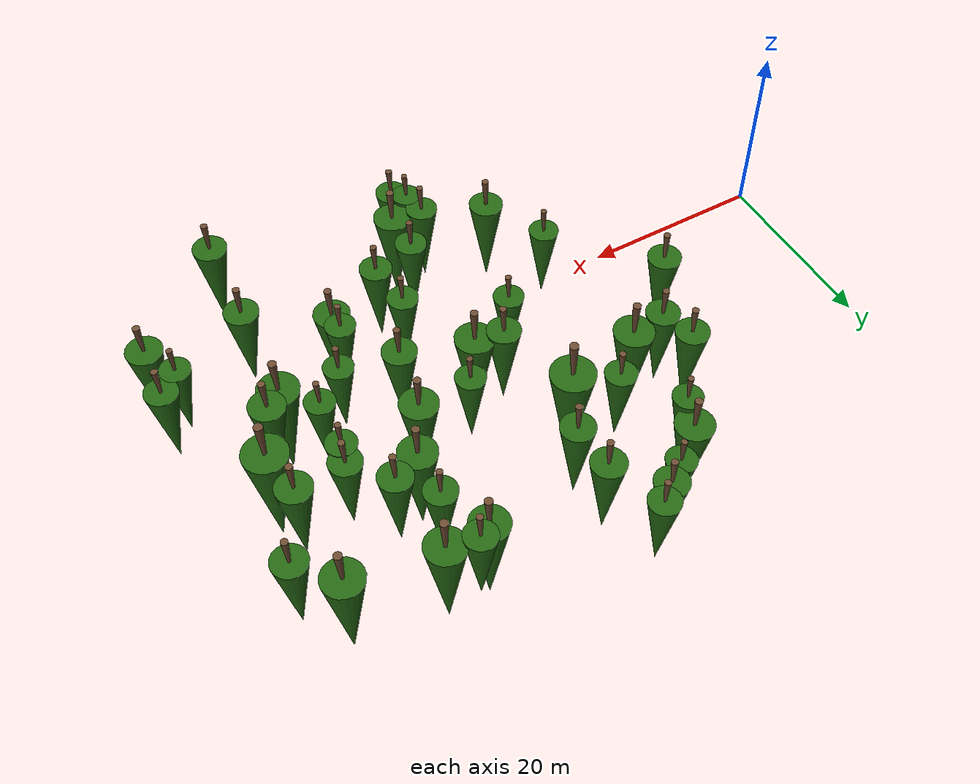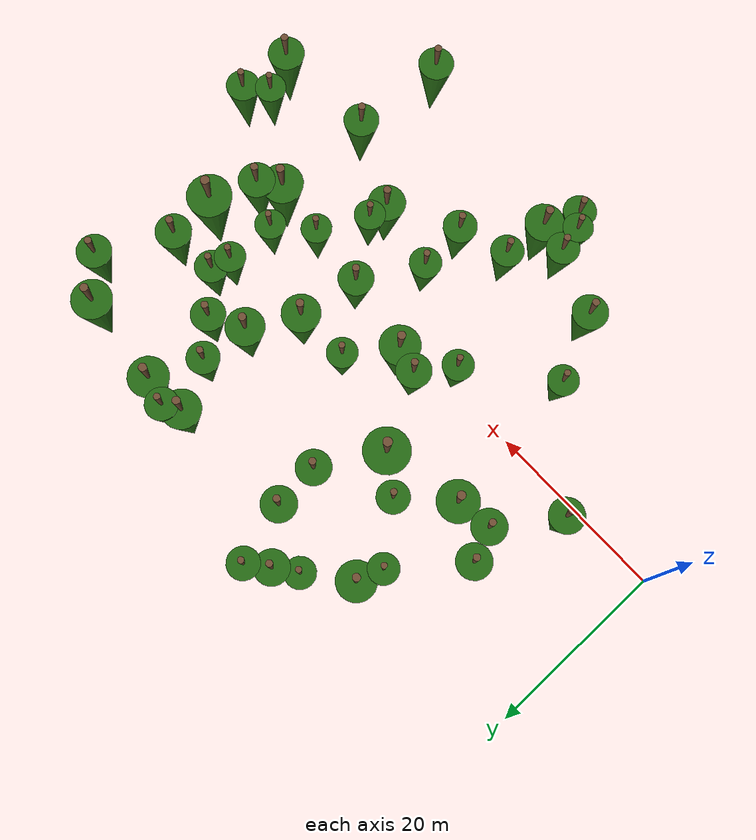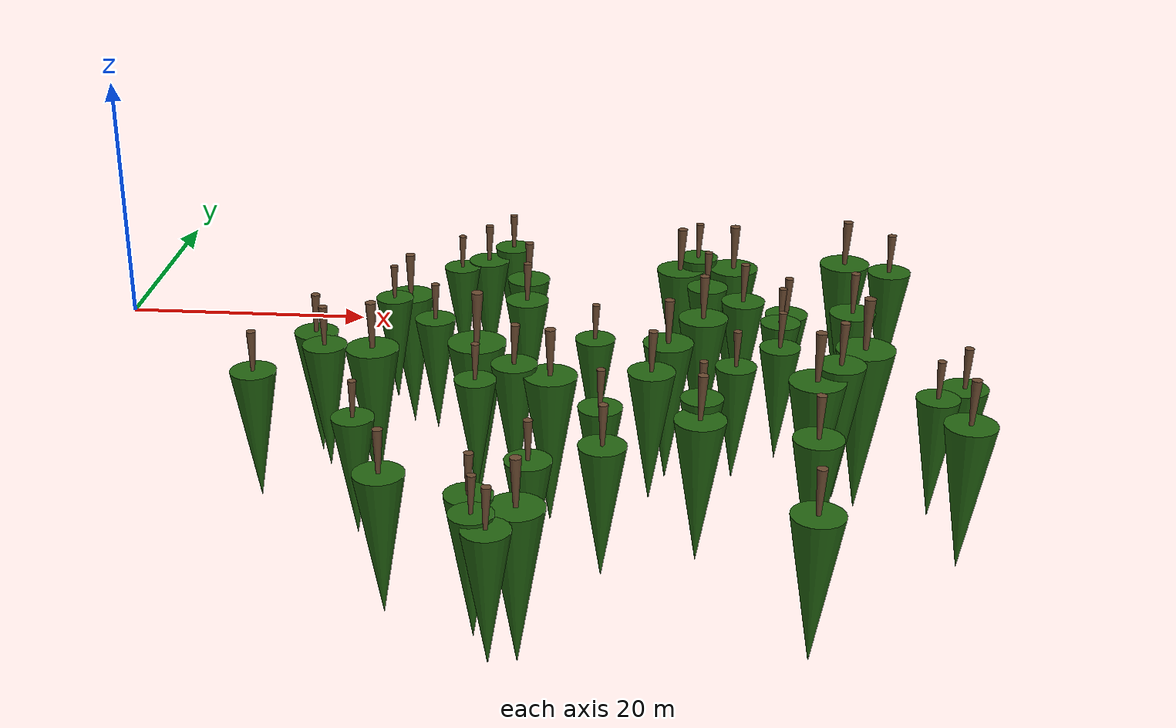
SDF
<sdf version="1.10">
 <model name="lehrforst_trees">
  <static>true</static>
  <link name="tree_0003">
   <collision name="tree_0003_collision">
    <pose>28.569 8.946 -5.416 3.142 0.028 0</pose>
    <geometry><cone><radius>0.545</radius><length>8.720</length></cone></geometry>
   </collision>
   <visual name="tree_0003_trunk">
    <pose>28.569 8.946 -5.416 3.142 0.028 0</pose>
    <geometry><cone><radius>0.545</radius><length>8.720</length></cone></geometry>
    <material>
     <ambient>0.42 0.29 0.19 1</ambient>
     <diffuse>0.42 0.29 0.19 1</diffuse>
     <specular>0.42 0.29 0.19 1</specular>
    </material>
   </visual>
   <visual name="tree_0003_leaves">
    <pose>28.569 8.946 -14.136 3.142 0 0</pose>
    <geometry><cone><radius>2.725</radius><length>16.350</length></cone></geometry>
    <material>
     <ambient>0.14 0.40 0.07 1</ambient>
     <diffuse>0.14 0.40 0.07 1</diffuse>
     <specular>0.14 0.40 0.07 1</specular>
    </material>
   </visual>
  </link>
  <link name="tree_0008">
   <collision name="tree_0008_collision">
    <pose>63.142 3.854 -2.577 3.142 0.009 0</pose>
    <geometry><cone><radius>0.523</radius><length>8.368</length></cone></geometry>
   </collision>
   <visual name="tree_0008_trunk">
    <pose>63.142 3.854 -2.577 3.142 0.009 0</pose>
    <geometry><cone><radius>0.523</radius><length>8.368</length></cone></geometry>
    <material>
     <ambient>0.42 0.29 0.19 1</ambient>
     <diffuse>0.42 0.29 0.19 1</diffuse>
     <specular>0.42 0.29 0.19 1</specular>
    </material>
   </visual>
   <visual name="tree_0008_leaves">
    <pose>63.142 3.854 -10.945 3.142 0 0</pose>
    <geometry><cone><radius>2.615</radius><length>15.690</length></cone></geometry>
    <material>
     <ambient>0.14 0.40 0.07 1</ambient>
     <diffuse>0.14 0.40 0.07 1</diffuse>
     <specular>0.14 0.40 0.07 1</specular>
    </material>
   </visual>
  </link>
  <link name="tree_0011">
   <collision name="tree_0011_collision">
    <pose>19.209 7.130 -5.545 3.142 0.007 0</pose>
    <geometry><cone><radius>0.492</radius><length>7.872</length></cone></geometry>
   </collision>
   <visual name="tree_0011_trunk">
    <pose>19.209 7.130 -5.545 3.142 0.007 0</pose>
    <geometry><cone><radius>0.492</radius><length>7.872</length></cone></geometry>
    <material>
     <ambient>0.42 0.29 0.19 1</ambient>
     <diffuse>0.42 0.29 0.19 1</diffuse>
     <specular>0.42 0.29 0.19 1</specular>
    </material>
   </visual>
   <visual name="tree_0011_leaves">
    <pose>19.209 7.130 -13.417 3.142 0 0</pose>
    <geometry><cone><radius>2.460</radius><length>14.760</length></cone></geometry>
    <material>
     <ambient>0.14 0.40 0.07 1</ambient>
     <diffuse>0.14 0.40 0.07 1</diffuse>
     <specular>0.14 0.40 0.07 1</specular>
    </material>
   </visual>
  </link>
  <link name="tree_0013">
   <collision name="tree_0013_collision">
    <pose>58.567 -3.165 -2.569 3.142 0.017 0</pose>
    <geometry><cone><radius>0.486</radius><length>7.776</length></cone></geometry>
   </collision>
   <visual name="tree_0013_trunk">
    <pose>58.567 -3.165 -2.569 3.142 0.017 0</pose>
    <geometry><cone><radius>0.486</radius><length>7.776</length></cone></geometry>
    <material>
     <ambient>0.42 0.29 0.19 1</ambient>
     <diffuse>0.42 0.29 0.19 1</diffuse>
     <specular>0.42 0.29 0.19 1</specular>
    </material>
   </visual>
   <visual name="tree_0013_leaves">
    <pose>58.567 -3.165 -10.345 3.142 0 0</pose>
    <geometry><cone><radius>2.430</radius><length>14.580</length></cone></geometry>
    <material>
     <ambient>0.14 0.40 0.07 1</ambient>
     <diffuse>0.14 0.40 0.07 1</diffuse>
     <specular>0.14 0.40 0.07 1</specular>
    </material>
   </visual>
  </link>
  <link name="tree_0015">
   <collision name="tree_0015_collision">
    <pose>36.035 -0.141 -4.305 3.142 0.002 0</pose>
    <geometry><cone><radius>0.478</radius><length>7.648</length></cone></geometry>
   </collision>
   <visual name="tree_0015_trunk">
    <pose>36.035 -0.141 -4.305 3.142 0.002 0</pose>
    <geometry><cone><radius>0.478</radius><length>7.648</length></cone></geometry>
    <material>
     <ambient>0.42 0.29 0.19 1</ambient>
     <diffuse>0.42 0.29 0.19 1</diffuse>
     <specular>0.42 0.29 0.19 1</specular>
    </material>
   </visual>
   <visual name="tree_0015_leaves">
    <pose>36.035 -0.141 -11.953 3.142 0 0</pose>
    <geometry><cone><radius>2.390</radius><length>14.340</length></cone></geometry>
    <material>
     <ambient>0.14 0.40 0.07 1</ambient>
     <diffuse>0.14 0.40 0.07 1</diffuse>
     <specular>0.14 0.40 0.07 1</specular>
    </material>
   </visual>
  </link>
  <link name="tree_0019">
   <collision name="tree_0019_collision">
    <pose>52.082 22.715 -2.816 3.142 0.006 0</pose>
    <geometry><cone><radius>0.472</radius><length>7.552</length></cone></geometry>
   </collision>
   <visual name="tree_0019_trunk">
    <pose>52.082 22.715 -2.816 3.142 0.006 0</pose>
    <geometry><cone><radius>0.472</radius><length>7.552</length></cone></geometry>
    <material>
     <ambient>0.42 0.29 0.19 1</ambient>
     <diffuse>0.42 0.29 0.19 1</diffuse>
     <specular>0.42 0.29 0.19 1</specular>
    </material>
   </visual>
   <visual name="tree_0019_leaves">
    <pose>52.082 22.715 -10.368 3.142 0 0</pose>
    <geometry><cone><radius>2.360</radius><length>14.160</length></cone></geometry>
    <material>
     <ambient>0.14 0.40 0.07 1</ambient>
     <diffuse>0.14 0.40 0.07 1</diffuse>
     <specular>0.14 0.40 0.07 1</specular>
    </material>
   </visual>
  </link>
  <link name="tree_0021">
   <collision name="tree_0021_collision">
    <pose>62.606 21.554 -1.598 3.142 0.021 0</pose>
    <geometry><cone><radius>0.469</radius><length>7.504</length></cone></geometry>
   </collision>
   <visual name="tree_0021_trunk">
    <pose>62.606 21.554 -1.598 3.142 0.021 0</pose>
    <geometry><cone><radius>0.469</radius><length>7.504</length></cone></geometry>
    <material>
     <ambient>0.42 0.29 0.19 1</ambient>
     <diffuse>0.42 0.29 0.19 1</diffuse>
     <specular>0.42 0.29 0.19 1</specular>
    </material>
   </visual>
   <visual name="tree_0021_leaves">
    <pose>62.606 21.554 -9.102 3.142 0 0</pose>
    <geometry><cone><radius>2.345</radius><length>14.070</length></cone></geometry>
    <material>
     <ambient>0.14 0.40 0.07 1</ambient>
     <diffuse>0.14 0.40 0.07 1</diffuse>
     <specular>0.14 0.40 0.07 1</specular>
    </material>
   </visual>
  </link>
  <link name="tree_0026">
   <collision name="tree_0026_collision">
    <pose>20.560 21.103 -6.016 3.142 0.017 0</pose>
    <geometry><cone><radius>0.464</radius><length>7.424</length></cone></geometry>
   </collision>
   <visual name="tree_0026_trunk">
    <pose>20.560 21.103 -6.016 3.142 0.017 0</pose>
    <geometry><cone><radius>0.464</radius><length>7.424</length></cone></geometry>
    <material>
     <ambient>0.42 0.29 0.19 1</ambient>
     <diffuse>0.42 0.29 0.19 1</diffuse>
     <specular>0.42 0.29 0.19 1</specular>
    </material>
   </visual>
   <visual name="tree_0026_leaves">
    <pose>20.560 21.103 -13.440 3.142 0 0</pose>
    <geometry><cone><radius>2.320</radius><length>13.920</length></cone></geometry>
    <material>
     <ambient>0.14 0.40 0.07 1</ambient>
     <diffuse>0.14 0.40 0.07 1</diffuse>
     <specular>0.14 0.40 0.07 1</specular>
    </material>
   </visual>
  </link>
  <link name="tree_0034">
   <collision name="tree_0034_collision">
    <pose>35.260 -22.294 -4.820 3.142 0.003 0</pose>
    <geometry><cone><radius>0.460</radius><length>7.360</length></cone></geometry>
   </collision>
   <visual name="tree_0034_trunk">
    <pose>35.260 -22.294 -4.820 3.142 0.003 0</pose>
    <geometry><cone><radius>0.460</radius><length>7.360</length></cone></geometry>
    <material>
     <ambient>0.42 0.29 0.19 1</ambient>
     <diffuse>0.42 0.29 0.19 1</diffuse>
     <specular>0.42 0.29 0.19 1</specular>
    </material>
   </visual>
   <visual name="tree_0034_leaves">
    <pose>35.260 -22.294 -12.180 3.142 0 0</pose>
    <geometry><cone><radius>2.300</radius><length>13.800</length></cone></geometry>
    <material>
     <ambient>0.14 0.40 0.07 1</ambient>
     <diffuse>0.14 0.40 0.07 1</diffuse>
     <specular>0.14 0.40 0.07 1</specular>
    </material>
   </visual>
  </link>
  <link name="tree_0035">
   <collision name="tree_0035_collision">
    <pose>46.962 22.473 -3.054 3.142 0.028 0</pose>
    <geometry><cone><radius>0.458</radius><length>7.328</length></cone></geometry>
   </collision>
   <visual name="tree_0035_trunk">
    <pose>46.962 22.473 -3.054 3.142 0.028 0</pose>
    <geometry><cone><radius>0.458</radius><length>7.328</length></cone></geometry>
    <material>
     <ambient>0.42 0.29 0.19 1</ambient>
     <diffuse>0.42 0.29 0.19 1</diffuse>
     <specular>0.42 0.29 0.19 1</specular>
    </material>
   </visual>
   <visual name="tree_0035_leaves">
    <pose>46.962 22.473 -10.382 3.142 0 0</pose>
    <geometry><cone><radius>2.290</radius><length>13.740</length></cone></geometry>
    <material>
     <ambient>0.14 0.40 0.07 1</ambient>
     <diffuse>0.14 0.40 0.07 1</diffuse>
     <specular>0.14 0.40 0.07 1</specular>
    </material>
   </visual>
  </link>
  <link name="tree_0040">
   <collision name="tree_0040_collision">
    <pose>49.152 11.139 -3.291 3.142 0.004 0</pose>
    <geometry><cone><radius>0.453</radius><length>7.248</length></cone></geometry>
   </collision>
   <visual name="tree_0040_trunk">
    <pose>49.152 11.139 -3.291 3.142 0.004 0</pose>
    <geometry><cone><radius>0.453</radius><length>7.248</length></cone></geometry>
    <material>
     <ambient>0.42 0.29 0.19 1</ambient>
     <diffuse>0.42 0.29 0.19 1</diffuse>
     <specular>0.42 0.29 0.19 1</specular>
    </material>
   </visual>
   <visual name="tree_0040_leaves">
    <pose>49.152 11.139 -10.539 3.142 0 0</pose>
    <geometry><cone><radius>2.265</radius><length>13.590</length></cone></geometry>
    <material>
     <ambient>0.14 0.40 0.07 1</ambient>
     <diffuse>0.14 0.40 0.07 1</diffuse>
     <specular>0.14 0.40 0.07 1</specular>
    </material>
   </visual>
  </link>
  <link name="tree_0041">
   <collision name="tree_0041_collision">
    <pose>46.069 5.531 -3.400 3.142 0.001 0</pose>
    <geometry><cone><radius>0.452</radius><length>7.232</length></cone></geometry>
   </collision>
   <visual name="tree_0041_trunk">
    <pose>46.069 5.531 -3.400 3.142 0.001 0</pose>
    <geometry><cone><radius>0.452</radius><length>7.232</length></cone></geometry>
    <material>
     <ambient>0.42 0.29 0.19 1</ambient>
     <diffuse>0.42 0.29 0.19 1</diffuse>
     <specular>0.42 0.29 0.19 1</specular>
    </material>
   </visual>
   <visual name="tree_0041_leaves">
    <pose>46.069 5.531 -10.632 3.142 0 0</pose>
    <geometry><cone><radius>2.260</radius><length>13.560</length></cone></geometry>
    <material>
     <ambient>0.14 0.40 0.07 1</ambient>
     <diffuse>0.14 0.40 0.07 1</diffuse>
     <specular>0.14 0.40 0.07 1</specular>
    </material>
   </visual>
  </link>
  <link name="tree_0060">
   <collision name="tree_0060_collision">
    <pose>48.872 -10.303 -3.029 3.142 0.029 0</pose>
    <geometry><cone><radius>0.433</radius><length>6.928</length></cone></geometry>
   </collision>
   <visual name="tree_0060_trunk">
    <pose>48.872 -10.303 -3.029 3.142 0.029 0</pose>
    <geometry><cone><radius>0.433</radius><length>6.928</length></cone></geometry>
    <material>
     <ambient>0.42 0.29 0.19 1</ambient>
     <diffuse>0.42 0.29 0.19 1</diffuse>
     <specular>0.42 0.29 0.19 1</specular>
    </material>
   </visual>
   <visual name="tree_0060_leaves">
    <pose>48.872 -10.303 -9.957 3.142 0 0</pose>
    <geometry><cone><radius>2.165</radius><length>12.990</length></cone></geometry>
    <material>
     <ambient>0.14 0.40 0.07 1</ambient>
     <diffuse>0.14 0.40 0.07 1</diffuse>
     <specular>0.14 0.40 0.07 1</specular>
    </material>
   </visual>
  </link>
  <link name="tree_0071">
   <collision name="tree_0071_collision">
    <pose>60.635 -1.175 -1.958 3.142 0.021 0</pose>
    <geometry><cone><radius>0.423</radius><length>6.768</length></cone></geometry>
   </collision>
   <visual name="tree_0071_trunk">
    <pose>60.635 -1.175 -1.958 3.142 0.021 0</pose>
    <geometry><cone><radius>0.423</radius><length>6.768</length></cone></geometry>
    <material>
     <ambient>0.42 0.29 0.19 1</ambient>
     <diffuse>0.42 0.29 0.19 1</diffuse>
     <specular>0.42 0.29 0.19 1</specular>
    </material>
   </visual>
   <visual name="tree_0071_leaves">
    <pose>60.635 -1.175 -8.726 3.142 0 0</pose>
    <geometry><cone><radius>2.115</radius><length>12.690</length></cone></geometry>
    <material>
     <ambient>0.14 0.40 0.07 1</ambient>
     <diffuse>0.14 0.40 0.07 1</diffuse>
     <specular>0.14 0.40 0.07 1</specular>
    </material>
   </visual>
  </link>
  <link name="tree_0076">
   <collision name="tree_0076_collision">
    <pose>69.408 -13.844 -0.876 3.142 0.017 0</pose>
    <geometry><cone><radius>0.420</radius><length>6.720</length></cone></geometry>
   </collision>
   <visual name="tree_0076_trunk">
    <pose>69.408 -13.844 -0.876 3.142 0.017 0</pose>
    <geometry><cone><radius>0.420</radius><length>6.720</length></cone></geometry>
    <material>
     <ambient>0.42 0.29 0.19 1</ambient>
     <diffuse>0.42 0.29 0.19 1</diffuse>
     <specular>0.42 0.29 0.19 1</specular>
    </material>
   </visual>
   <visual name="tree_0076_leaves">
    <pose>69.408 -13.844 -7.596 3.142 0 0</pose>
    <geometry><cone><radius>2.100</radius><length>12.600</length></cone></geometry>
    <material>
     <ambient>0.14 0.40 0.07 1</ambient>
     <diffuse>0.14 0.40 0.07 1</diffuse>
     <specular>0.14 0.40 0.07 1</specular>
    </material>
   </visual>
  </link>
  <link name="tree_0080">
   <collision name="tree_0080_collision">
    <pose>24.254 -18.389 -4.615 3.142 0.018 0</pose>
    <geometry><cone><radius>0.419</radius><length>6.704</length></cone></geometry>
   </collision>
   <visual name="tree_0080_trunk">
    <pose>24.254 -18.389 -4.615 3.142 0.018 0</pose>
    <geometry><cone><radius>0.419</radius><length>6.704</length></cone></geometry>
    <material>
     <ambient>0.42 0.29 0.19 1</ambient>
     <diffuse>0.42 0.29 0.19 1</diffuse>
     <specular>0.42 0.29 0.19 1</specular>
    </material>
   </visual>
   <visual name="tree_0080_leaves">
    <pose>24.254 -18.389 -11.319 3.142 0 0</pose>
    <geometry><cone><radius>2.095</radius><length>12.570</length></cone></geometry>
    <material>
     <ambient>0.14 0.40 0.07 1</ambient>
     <diffuse>0.14 0.40 0.07 1</diffuse>
     <specular>0.14 0.40 0.07 1</specular>
    </material>
   </visual>
  </link>
  <link name="tree_0083">
   <collision name="tree_0083_collision">
    <pose>62.414 9.743 -1.766 3.142 0.008 0</pose>
    <geometry><cone><radius>0.416</radius><length>6.656</length></cone></geometry>
   </collision>
   <visual name="tree_0083_trunk">
    <pose>62.414 9.743 -1.766 3.142 0.008 0</pose>
    <geometry><cone><radius>0.416</radius><length>6.656</length></cone></geometry>
    <material>
     <ambient>0.42 0.29 0.19 1</ambient>
     <diffuse>0.42 0.29 0.19 1</diffuse>
     <specular>0.42 0.29 0.19 1</specular>
    </material>
   </visual>
   <visual name="tree_0083_leaves">
    <pose>62.414 9.743 -8.422 3.142 0 0</pose>
    <geometry><cone><radius>2.080</radius><length>12.480</length></cone></geometry>
    <material>
     <ambient>0.14 0.40 0.07 1</ambient>
     <diffuse>0.14 0.40 0.07 1</diffuse>
     <specular>0.14 0.40 0.07 1</specular>
    </material>
   </visual>
  </link>
  <link name="tree_0085">
   <collision name="tree_0085_collision">
    <pose>32.181 21.663 -4.247 3.142 0.032 0</pose>
    <geometry><cone><radius>0.414</radius><length>6.624</length></cone></geometry>
   </collision>
   <visual name="tree_0085_trunk">
    <pose>32.181 21.663 -4.247 3.142 0.032 0</pose>
    <geometry><cone><radius>0.414</radius><length>6.624</length></cone></geometry>
    <material>
     <ambient>0.42 0.29 0.19 1</ambient>
     <diffuse>0.42 0.29 0.19 1</diffuse>
     <specular>0.42 0.29 0.19 1</specular>
    </material>
   </visual>
   <visual name="tree_0085_leaves">
    <pose>32.181 21.663 -10.871 3.142 0 0</pose>
    <geometry><cone><radius>2.070</radius><length>12.420</length></cone></geometry>
    <material>
     <ambient>0.14 0.40 0.07 1</ambient>
     <diffuse>0.14 0.40 0.07 1</diffuse>
     <specular>0.14 0.40 0.07 1</specular>
    </material>
   </visual>
  </link>
  <link name="tree_0088">
   <collision name="tree_0088_collision">
    <pose>13.372 10.431 -5.669 3.142 0.033 0</pose>
    <geometry><cone><radius>0.413</radius><length>6.608</length></cone></geometry>
   </collision>
   <visual name="tree_0088_trunk">
    <pose>13.372 10.431 -5.669 3.142 0.033 0</pose>
    <geometry><cone><radius>0.413</radius><length>6.608</length></cone></geometry>
    <material>
     <ambient>0.42 0.29 0.19 1</ambient>
     <diffuse>0.42 0.29 0.19 1</diffuse>
     <specular>0.42 0.29 0.19 1</specular>
    </material>
   </visual>
   <visual name="tree_0088_leaves">
    <pose>13.372 10.431 -12.277 3.142 0 0</pose>
    <geometry><cone><radius>2.065</radius><length>12.390</length></cone></geometry>
    <material>
     <ambient>0.14 0.40 0.07 1</ambient>
     <diffuse>0.14 0.40 0.07 1</diffuse>
     <specular>0.14 0.40 0.07 1</specular>
    </material>
   </visual>
  </link>
  <link name="tree_0092">
   <collision name="tree_0092_collision">
    <pose>10.021 -0.234 -4.865 3.142 0.021 0</pose>
    <geometry><cone><radius>0.412</radius><length>6.592</length></cone></geometry>
   </collision>
   <visual name="tree_0092_trunk">
    <pose>10.021 -0.234 -4.865 3.142 0.021 0</pose>
    <geometry><cone><radius>0.412</radius><length>6.592</length></cone></geometry>
    <material>
     <ambient>0.42 0.29 0.19 1</ambient>
     <diffuse>0.42 0.29 0.19 1</diffuse>
     <specular>0.42 0.29 0.19 1</specular>
    </material>
   </visual>
   <visual name="tree_0092_leaves">
    <pose>10.021 -0.234 -11.457 3.142 0 0</pose>
    <geometry><cone><radius>2.060</radius><length>12.360</length></cone></geometry>
    <material>
     <ambient>0.14 0.40 0.07 1</ambient>
     <diffuse>0.14 0.40 0.07 1</diffuse>
     <specular>0.14 0.40 0.07 1</specular>
    </material>
   </visual>
  </link>
  <link name="tree_0093">
   <collision name="tree_0093_collision">
    <pose>14.920 6.676 -5.272 3.142 0.005 0</pose>
    <geometry><cone><radius>0.412</radius><length>6.592</length></cone></geometry>
   </collision>
   <visual name="tree_0093_trunk">
    <pose>14.920 6.676 -5.272 3.142 0.005 0</pose>
    <geometry><cone><radius>0.412</radius><length>6.592</length></cone></geometry>
    <material>
     <ambient>0.42 0.29 0.19 1</ambient>
     <diffuse>0.42 0.29 0.19 1</diffuse>
     <specular>0.42 0.29 0.19 1</specular>
    </material>
   </visual>
   <visual name="tree_0093_leaves">
    <pose>14.920 6.676 -11.864 3.142 0 0</pose>
    <geometry><cone><radius>2.060</radius><length>12.360</length></cone></geometry>
    <material>
     <ambient>0.14 0.40 0.07 1</ambient>
     <diffuse>0.14 0.40 0.07 1</diffuse>
     <specular>0.14 0.40 0.07 1</specular>
    </material>
   </visual>
  </link>
  <link name="tree_0094">
   <collision name="tree_0094_collision">
    <pose>57.165 -26.080 -2.358 3.142 0.011 0</pose>
    <geometry><cone><radius>0.412</radius><length>6.592</length></cone></geometry>
   </collision>
   <visual name="tree_0094_trunk">
    <pose>57.165 -26.080 -2.358 3.142 0.011 0</pose>
    <geometry><cone><radius>0.412</radius><length>6.592</length></cone></geometry>
    <material>
     <ambient>0.42 0.29 0.19 1</ambient>
     <diffuse>0.42 0.29 0.19 1</diffuse>
     <specular>0.42 0.29 0.19 1</specular>
    </material>
   </visual>
   <visual name="tree_0094_leaves">
    <pose>57.165 -26.080 -8.950 3.142 0 0</pose>
    <geometry><cone><radius>2.060</radius><length>12.360</length></cone></geometry>
    <material>
     <ambient>0.14 0.40 0.07 1</ambient>
     <diffuse>0.14 0.40 0.07 1</diffuse>
     <specular>0.14 0.40 0.07 1</specular>
    </material>
   </visual>
  </link>
  <link name="tree_0095">
   <collision name="tree_0095_collision">
    <pose>44.750 -1.610 -2.992 3.142 0.022 0</pose>
    <geometry><cone><radius>0.411</radius><length>6.576</length></cone></geometry>
   </collision>
   <visual name="tree_0095_trunk">
    <pose>44.750 -1.610 -2.992 3.142 0.022 0</pose>
    <geometry><cone><radius>0.411</radius><length>6.576</length></cone></geometry>
    <material>
     <ambient>0.42 0.29 0.19 1</ambient>
     <diffuse>0.42 0.29 0.19 1</diffuse>
     <specular>0.42 0.29 0.19 1</specular>
    </material>
   </visual>
   <visual name="tree_0095_leaves">
    <pose>44.750 -1.610 -9.568 3.142 0 0</pose>
    <geometry><cone><radius>2.055</radius><length>12.330</length></cone></geometry>
    <material>
     <ambient>0.14 0.40 0.07 1</ambient>
     <diffuse>0.14 0.40 0.07 1</diffuse>
     <specular>0.14 0.40 0.07 1</specular>
    </material>
   </visual>
  </link>
  <link name="tree_0099">
   <collision name="tree_0099_collision">
    <pose>32.546 16.219 -4.222 3.142 0.024 0</pose>
    <geometry><cone><radius>0.409</radius><length>6.544</length></cone></geometry>
   </collision>
   <visual name="tree_0099_trunk">
    <pose>32.546 16.219 -4.222 3.142 0.024 0</pose>
    <geometry><cone><radius>0.409</radius><length>6.544</length></cone></geometry>
    <material>
     <ambient>0.42 0.29 0.19 1</ambient>
     <diffuse>0.42 0.29 0.19 1</diffuse>
     <specular>0.42 0.29 0.19 1</specular>
    </material>
   </visual>
   <visual name="tree_0099_leaves">
    <pose>32.546 16.219 -10.766 3.142 0 0</pose>
    <geometry><cone><radius>2.045</radius><length>12.270</length></cone></geometry>
    <material>
     <ambient>0.14 0.40 0.07 1</ambient>
     <diffuse>0.14 0.40 0.07 1</diffuse>
     <specular>0.14 0.40 0.07 1</specular>
    </material>
   </visual>
  </link>
  <link name="tree_0100">
   <collision name="tree_0100_collision">
    <pose>32.823 0.866 -3.861 3.142 0.037 0</pose>
    <geometry><cone><radius>0.409</radius><length>6.544</length></cone></geometry>
   </collision>
   <visual name="tree_0100_trunk">
    <pose>32.823 0.866 -3.861 3.142 0.037 0</pose>
    <geometry><cone><radius>0.409</radius><length>6.544</length></cone></geometry>
    <material>
     <ambient>0.42 0.29 0.19 1</ambient>
     <diffuse>0.42 0.29 0.19 1</diffuse>
     <specular>0.42 0.29 0.19 1</specular>
    </material>
   </visual>
   <visual name="tree_0100_leaves">
    <pose>32.823 0.866 -10.405 3.142 0 0</pose>
    <geometry><cone><radius>2.045</radius><length>12.270</length></cone></geometry>
    <material>
     <ambient>0.14 0.40 0.07 1</ambient>
     <diffuse>0.14 0.40 0.07 1</diffuse>
     <specular>0.14 0.40 0.07 1</specular>
    </material>
   </visual>
  </link>
  <link name="tree_0104">
   <collision name="tree_0104_collision">
    <pose>57.872 -14.827 -2.043 3.142 0.002 0</pose>
    <geometry><cone><radius>0.407</radius><length>6.512</length></cone></geometry>
   </collision>
   <visual name="tree_0104_trunk">
    <pose>57.872 -14.827 -2.043 3.142 0.002 0</pose>
    <geometry><cone><radius>0.407</radius><length>6.512</length></cone></geometry>
    <material>
     <ambient>0.42 0.29 0.19 1</ambient>
     <diffuse>0.42 0.29 0.19 1</diffuse>
     <specular>0.42 0.29 0.19 1</specular>
    </material>
   </visual>
   <visual name="tree_0104_leaves">
    <pose>57.872 -14.827 -8.555 3.142 0 0</pose>
    <geometry><cone><radius>2.035</radius><length>12.210</length></cone></geometry>
    <material>
     <ambient>0.14 0.40 0.07 1</ambient>
     <diffuse>0.14 0.40 0.07 1</diffuse>
     <specular>0.14 0.40 0.07 1</specular>
    </material>
   </visual>
  </link>
  <link name="tree_0107">
   <collision name="tree_0107_collision">
    <pose>27.715 26.800 -4.414 3.142 0.035 0</pose>
    <geometry><cone><radius>0.405</radius><length>6.480</length></cone></geometry>
   </collision>
   <visual name="tree_0107_trunk">
    <pose>27.715 26.800 -4.414 3.142 0.035 0</pose>
    <geometry><cone><radius>0.405</radius><length>6.480</length></cone></geometry>
    <material>
     <ambient>0.42 0.29 0.19 1</ambient>
     <diffuse>0.42 0.29 0.19 1</diffuse>
     <specular>0.42 0.29 0.19 1</specular>
    </material>
   </visual>
   <visual name="tree_0107_leaves">
    <pose>27.715 26.800 -10.894 3.142 0 0</pose>
    <geometry><cone><radius>2.025</radius><length>12.150</length></cone></geometry>
    <material>
     <ambient>0.14 0.40 0.07 1</ambient>
     <diffuse>0.14 0.40 0.07 1</diffuse>
     <specular>0.14 0.40 0.07 1</specular>
    </material>
   </visual>
  </link>
  <link name="tree_0115">
   <collision name="tree_0115_collision">
    <pose>66.375 17.798 -0.910 3.142 0.009 0</pose>
    <geometry><cone><radius>0.400</radius><length>6.400</length></cone></geometry>
   </collision>
   <visual name="tree_0115_trunk">
    <pose>66.375 17.798 -0.910 3.142 0.009 0</pose>
    <geometry><cone><radius>0.400</radius><length>6.400</length></cone></geometry>
    <material>
     <ambient>0.42 0.29 0.19 1</ambient>
     <diffuse>0.42 0.29 0.19 1</diffuse>
     <specular>0.42 0.29 0.19 1</specular>
    </material>
   </visual>
   <visual name="tree_0115_leaves">
    <pose>66.375 17.798 -7.310 3.142 0 0</pose>
    <geometry><cone><radius>2.000</radius><length>12.000</length></cone></geometry>
    <material>
     <ambient>0.14 0.40 0.07 1</ambient>
     <diffuse>0.14 0.40 0.07 1</diffuse>
     <specular>0.14 0.40 0.07 1</specular>
    </material>
   </visual>
  </link>
  <link name="tree_0118">
   <collision name="tree_0118_collision">
    <pose>52.779 13.260 -2.447 3.142 0.025 0</pose>
    <geometry><cone><radius>0.399</radius><length>6.384</length></cone></geometry>
   </collision>
   <visual name="tree_0118_trunk">
    <pose>52.779 13.260 -2.447 3.142 0.025 0</pose>
    <geometry><cone><radius>0.399</radius><length>6.384</length></cone></geometry>
    <material>
     <ambient>0.42 0.29 0.19 1</ambient>
     <diffuse>0.42 0.29 0.19 1</diffuse>
     <specular>0.42 0.29 0.19 1</specular>
    </material>
   </visual>
   <visual name="tree_0118_leaves">
    <pose>52.779 13.260 -8.831 3.142 0 0</pose>
    <geometry><cone><radius>1.995</radius><length>11.970</length></cone></geometry>
    <material>
     <ambient>0.14 0.40 0.07 1</ambient>
     <diffuse>0.14 0.40 0.07 1</diffuse>
     <specular>0.14 0.40 0.07 1</specular>
    </material>
   </visual>
  </link>
  <link name="tree_0128">
   <collision name="tree_0128_collision">
    <pose>41.271 -14.518 -3.526 3.142 0.011 0</pose>
    <geometry><cone><radius>0.394</radius><length>6.304</length></cone></geometry>
   </collision>
   <visual name="tree_0128_trunk">
    <pose>41.271 -14.518 -3.526 3.142 0.011 0</pose>
    <geometry><cone><radius>0.394</radius><length>6.304</length></cone></geometry>
    <material>
     <ambient>0.42 0.29 0.19 1</ambient>
     <diffuse>0.42 0.29 0.19 1</diffuse>
     <specular>0.42 0.29 0.19 1</specular>
    </material>
   </visual>
   <visual name="tree_0128_leaves">
    <pose>41.271 -14.518 -9.830 3.142 0 0</pose>
    <geometry><cone><radius>1.970</radius><length>11.820</length></cone></geometry>
    <material>
     <ambient>0.14 0.40 0.07 1</ambient>
     <diffuse>0.14 0.40 0.07 1</diffuse>
     <specular>0.14 0.40 0.07 1</specular>
    </material>
   </visual>
  </link>
  <link name="tree_0133">
   <collision name="tree_0133_collision">
    <pose>33.437 -26.119 -4.680 3.142 0.034 0</pose>
    <geometry><cone><radius>0.388</radius><length>6.208</length></cone></geometry>
   </collision>
   <visual name="tree_0133_trunk">
    <pose>33.437 -26.119 -4.680 3.142 0.034 0</pose>
    <geometry><cone><radius>0.388</radius><length>6.208</length></cone></geometry>
    <material>
     <ambient>0.42 0.29 0.19 1</ambient>
     <diffuse>0.42 0.29 0.19 1</diffuse>
     <specular>0.42 0.29 0.19 1</specular>
    </material>
   </visual>
   <visual name="tree_0133_leaves">
    <pose>33.437 -26.119 -10.888 3.142 0 0</pose>
    <geometry><cone><radius>1.940</radius><length>11.640</length></cone></geometry>
    <material>
     <ambient>0.14 0.40 0.07 1</ambient>
     <diffuse>0.14 0.40 0.07 1</diffuse>
     <specular>0.14 0.40 0.07 1</specular>
    </material>
   </visual>
  </link>
  <link name="tree_0134">
   <collision name="tree_0134_collision">
    <pose>31.612 -21.485 -4.444 3.142 0.028 0</pose>
    <geometry><cone><radius>0.388</radius><length>6.208</length></cone></geometry>
   </collision>
   <visual name="tree_0134_trunk">
    <pose>31.612 -21.485 -4.444 3.142 0.028 0</pose>
    <geometry><cone><radius>0.388</radius><length>6.208</length></cone></geometry>
    <material>
     <ambient>0.42 0.29 0.19 1</ambient>
     <diffuse>0.42 0.29 0.19 1</diffuse>
     <specular>0.42 0.29 0.19 1</specular>
    </material>
   </visual>
   <visual name="tree_0134_leaves">
    <pose>31.612 -21.485 -10.652 3.142 0 0</pose>
    <geometry><cone><radius>1.940</radius><length>11.640</length></cone></geometry>
    <material>
     <ambient>0.14 0.40 0.07 1</ambient>
     <diffuse>0.14 0.40 0.07 1</diffuse>
     <specular>0.14 0.40 0.07 1</specular>
    </material>
   </visual>
  </link>
  <link name="tree_0142">
   <collision name="tree_0142_collision">
    <pose>69.806 -7.501 -0.801 3.142 0.008 0</pose>
    <geometry><cone><radius>0.383</radius><length>6.128</length></cone></geometry>
   </collision>
   <visual name="tree_0142_trunk">
    <pose>69.806 -7.501 -0.801 3.142 0.008 0</pose>
    <geometry><cone><radius>0.383</radius><length>6.128</length></cone></geometry>
    <material>
     <ambient>0.42 0.29 0.19 1</ambient>
     <diffuse>0.42 0.29 0.19 1</diffuse>
     <specular>0.42 0.29 0.19 1</specular>
    </material>
   </visual>
   <visual name="tree_0142_leaves">
    <pose>69.806 -7.501 -6.929 3.142 0 0</pose>
    <geometry><cone><radius>1.915</radius><length>11.490</length></cone></geometry>
    <material>
     <ambient>0.14 0.40 0.07 1</ambient>
     <diffuse>0.14 0.40 0.07 1</diffuse>
     <specular>0.14 0.40 0.07 1</specular>
    </material>
   </visual>
  </link>
  <link name="tree_0143">
   <collision name="tree_0143_collision">
    <pose>35.634 -16.514 -4.009 3.142 0.003 0</pose>
    <geometry><cone><radius>0.383</radius><length>6.128</length></cone></geometry>
   </collision>
   <visual name="tree_0143_trunk">
    <pose>35.634 -16.514 -4.009 3.142 0.003 0</pose>
    <geometry><cone><radius>0.383</radius><length>6.128</length></cone></geometry>
    <material>
     <ambient>0.42 0.29 0.19 1</ambient>
     <diffuse>0.42 0.29 0.19 1</diffuse>
     <specular>0.42 0.29 0.19 1</specular>
    </material>
   </visual>
   <visual name="tree_0143_leaves">
    <pose>35.634 -16.514 -10.137 3.142 0 0</pose>
    <geometry><cone><radius>1.915</radius><length>11.490</length></cone></geometry>
    <material>
     <ambient>0.14 0.40 0.07 1</ambient>
     <diffuse>0.14 0.40 0.07 1</diffuse>
     <specular>0.14 0.40 0.07 1</specular>
    </material>
   </visual>
  </link>
  <link name="tree_0146">
   <collision name="tree_0146_collision">
    <pose>56.520 9.371 -1.998 3.142 0.031 0</pose>
    <geometry><cone><radius>0.382</radius><length>6.112</length></cone></geometry>
   </collision>
   <visual name="tree_0146_trunk">
    <pose>56.520 9.371 -1.998 3.142 0.031 0</pose>
    <geometry><cone><radius>0.382</radius><length>6.112</length></cone></geometry>
    <material>
     <ambient>0.42 0.29 0.19 1</ambient>
     <diffuse>0.42 0.29 0.19 1</diffuse>
     <specular>0.42 0.29 0.19 1</specular>
    </material>
   </visual>
   <visual name="tree_0146_leaves">
    <pose>56.520 9.371 -8.110 3.142 0 0</pose>
    <geometry><cone><radius>1.910</radius><length>11.460</length></cone></geometry>
    <material>
     <ambient>0.14 0.40 0.07 1</ambient>
     <diffuse>0.14 0.40 0.07 1</diffuse>
     <specular>0.14 0.40 0.07 1</specular>
    </material>
   </visual>
  </link>
  <link name="tree_0147">
   <collision name="tree_0147_collision">
    <pose>49.512 16.935 -2.643 3.142 0.007 0</pose>
    <geometry><cone><radius>0.382</radius><length>6.112</length></cone></geometry>
   </collision>
   <visual name="tree_0147_trunk">
    <pose>49.512 16.935 -2.643 3.142 0.007 0</pose>
    <geometry><cone><radius>0.382</radius><length>6.112</length></cone></geometry>
    <material>
     <ambient>0.42 0.29 0.19 1</ambient>
     <diffuse>0.42 0.29 0.19 1</diffuse>
     <specular>0.42 0.29 0.19 1</specular>
    </material>
   </visual>
   <visual name="tree_0147_leaves">
    <pose>49.512 16.935 -8.755 3.142 0 0</pose>
    <geometry><cone><radius>1.910</radius><length>11.460</length></cone></geometry>
    <material>
     <ambient>0.14 0.40 0.07 1</ambient>
     <diffuse>0.14 0.40 0.07 1</diffuse>
     <specular>0.14 0.40 0.07 1</specular>
    </material>
   </visual>
  </link>
  <link name="tree_0154">
   <collision name="tree_0154_collision">
    <pose>24.334 12.093 -4.697 3.142 0.025 0</pose>
    <geometry><cone><radius>0.380</radius><length>6.080</length></cone></geometry>
   </collision>
   <visual name="tree_0154_trunk">
    <pose>24.334 12.093 -4.697 3.142 0.025 0</pose>
    <geometry><cone><radius>0.380</radius><length>6.080</length></cone></geometry>
    <material>
     <ambient>0.42 0.29 0.19 1</ambient>
     <diffuse>0.42 0.29 0.19 1</diffuse>
     <specular>0.42 0.29 0.19 1</specular>
    </material>
   </visual>
   <visual name="tree_0154_leaves">
    <pose>24.334 12.093 -10.777 3.142 0 0</pose>
    <geometry><cone><radius>1.900</radius><length>11.400</length></cone></geometry>
    <material>
     <ambient>0.14 0.40 0.07 1</ambient>
     <diffuse>0.14 0.40 0.07 1</diffuse>
     <specular>0.14 0.40 0.07 1</specular>
    </material>
   </visual>
  </link>
  <link name="tree_0156">
   <collision name="tree_0156_collision">
    <pose>48.653 23.689 -2.263 3.142 0.026 0</pose>
    <geometry><cone><radius>0.380</radius><length>6.080</length></cone></geometry>
   </collision>
   <visual name="tree_0156_trunk">
    <pose>48.653 23.689 -2.263 3.142 0.026 0</pose>
    <geometry><cone><radius>0.380</radius><length>6.080</length></cone></geometry>
    <material>
     <ambient>0.42 0.29 0.19 1</ambient>
     <diffuse>0.42 0.29 0.19 1</diffuse>
     <specular>0.42 0.29 0.19 1</specular>
    </material>
   </visual>
   <visual name="tree_0156_leaves">
    <pose>48.653 23.689 -8.343 3.142 0 0</pose>
    <geometry><cone><radius>1.900</radius><length>11.400</length></cone></geometry>
    <material>
     <ambient>0.14 0.40 0.07 1</ambient>
     <diffuse>0.14 0.40 0.07 1</diffuse>
     <specular>0.14 0.40 0.07 1</specular>
    </material>
   </visual>
  </link>
  <link name="tree_0164">
   <collision name="tree_0164_collision">
    <pose>30.040 28.734 -3.687 3.142 0.007 0</pose>
    <geometry><cone><radius>0.374</radius><length>5.984</length></cone></geometry>
   </collision>
   <visual name="tree_0164_trunk">
    <pose>30.040 28.734 -3.687 3.142 0.007 0</pose>
    <geometry><cone><radius>0.374</radius><length>5.984</length></cone></geometry>
    <material>
     <ambient>0.42 0.29 0.19 1</ambient>
     <diffuse>0.42 0.29 0.19 1</diffuse>
     <specular>0.42 0.29 0.19 1</specular>
    </material>
   </visual>
   <visual name="tree_0164_leaves">
    <pose>30.040 28.734 -9.671 3.142 0 0</pose>
    <geometry><cone><radius>1.870</radius><length>11.220</length></cone></geometry>
    <material>
     <ambient>0.14 0.40 0.07 1</ambient>
     <diffuse>0.14 0.40 0.07 1</diffuse>
     <specular>0.14 0.40 0.07 1</specular>
    </material>
   </visual>
  </link>
  <link name="tree_0173">
   <collision name="tree_0173_collision">
    <pose>40.775 -8.554 -3.146 3.142 0.016 0</pose>
    <geometry><cone><radius>0.372</radius><length>5.952</length></cone></geometry>
   </collision>
   <visual name="tree_0173_trunk">
    <pose>40.775 -8.554 -3.146 3.142 0.016 0</pose>
    <geometry><cone><radius>0.372</radius><length>5.952</length></cone></geometry>
    <material>
     <ambient>0.42 0.29 0.19 1</ambient>
     <diffuse>0.42 0.29 0.19 1</diffuse>
     <specular>0.42 0.29 0.19 1</specular>
    </material>
   </visual>
   <visual name="tree_0173_leaves">
    <pose>40.775 -8.554 -9.098 3.142 0 0</pose>
    <geometry><cone><radius>1.860</radius><length>11.160</length></cone></geometry>
    <material>
     <ambient>0.14 0.40 0.07 1</ambient>
     <diffuse>0.14 0.40 0.07 1</diffuse>
     <specular>0.14 0.40 0.07 1</specular>
    </material>
   </visual>
  </link>
  <link name="tree_0188">
   <collision name="tree_0188_collision">
    <pose>29.904 -3.082 -3.650 3.142 0.024 0</pose>
    <geometry><cone><radius>0.364</radius><length>5.824</length></cone></geometry>
   </collision>
   <visual name="tree_0188_trunk">
    <pose>29.904 -3.082 -3.650 3.142 0.024 0</pose>
    <geometry><cone><radius>0.364</radius><length>5.824</length></cone></geometry>
    <material>
     <ambient>0.42 0.29 0.19 1</ambient>
     <diffuse>0.42 0.29 0.19 1</diffuse>
     <specular>0.42 0.29 0.19 1</specular>
    </material>
   </visual>
   <visual name="tree_0188_leaves">
    <pose>29.904 -3.082 -9.474 3.142 0 0</pose>
    <geometry><cone><radius>1.820</radius><length>10.920</length></cone></geometry>
    <material>
     <ambient>0.14 0.40 0.07 1</ambient>
     <diffuse>0.14 0.40 0.07 1</diffuse>
     <specular>0.14 0.40 0.07 1</specular>
    </material>
   </visual>
  </link>
  <link name="tree_0197">
   <collision name="tree_0197_collision">
    <pose>20.782 -10.396 -3.958 3.142 0.032 0</pose>
    <geometry><cone><radius>0.360</radius><length>5.760</length></cone></geometry>
   </collision>
   <visual name="tree_0197_trunk">
    <pose>20.782 -10.396 -3.958 3.142 0.032 0</pose>
    <geometry><cone><radius>0.360</radius><length>5.760</length></cone></geometry>
    <material>
     <ambient>0.42 0.29 0.19 1</ambient>
     <diffuse>0.42 0.29 0.19 1</diffuse>
     <specular>0.42 0.29 0.19 1</specular>
    </material>
   </visual>
   <visual name="tree_0197_leaves">
    <pose>20.782 -10.396 -9.718 3.142 0 0</pose>
    <geometry><cone><radius>1.800</radius><length>10.800</length></cone></geometry>
    <material>
     <ambient>0.14 0.40 0.07 1</ambient>
     <diffuse>0.14 0.40 0.07 1</diffuse>
     <specular>0.14 0.40 0.07 1</specular>
    </material>
   </visual>
  </link>
  <link name="tree_0202">
   <collision name="tree_0202_collision">
    <pose>48.984 -7.730 -2.406 3.142 0.007 0</pose>
    <geometry><cone><radius>0.359</radius><length>5.744</length></cone></geometry>
   </collision>
   <visual name="tree_0202_trunk">
    <pose>48.984 -7.730 -2.406 3.142 0.007 0</pose>
    <geometry><cone><radius>0.359</radius><length>5.744</length></cone></geometry>
    <material>
     <ambient>0.42 0.29 0.19 1</ambient>
     <diffuse>0.42 0.29 0.19 1</diffuse>
     <specular>0.42 0.29 0.19 1</specular>
    </material>
   </visual>
   <visual name="tree_0202_leaves">
    <pose>48.984 -7.730 -8.150 3.142 0 0</pose>
    <geometry><cone><radius>1.795</radius><length>10.770</length></cone></geometry>
    <material>
     <ambient>0.14 0.40 0.07 1</ambient>
     <diffuse>0.14 0.40 0.07 1</diffuse>
     <specular>0.14 0.40 0.07 1</specular>
    </material>
   </visual>
  </link>
  <link name="tree_0205">
   <collision name="tree_0205_collision">
    <pose>19.484 18.128 -5.240 3.142 0.020 0</pose>
    <geometry><cone><radius>0.359</radius><length>5.744</length></cone></geometry>
   </collision>
   <visual name="tree_0205_trunk">
    <pose>19.484 18.128 -5.240 3.142 0.020 0</pose>
    <geometry><cone><radius>0.359</radius><length>5.744</length></cone></geometry>
    <material>
     <ambient>0.42 0.29 0.19 1</ambient>
     <diffuse>0.42 0.29 0.19 1</diffuse>
     <specular>0.42 0.29 0.19 1</specular>
    </material>
   </visual>
   <visual name="tree_0205_leaves">
    <pose>19.484 18.128 -10.984 3.142 0 0</pose>
    <geometry><cone><radius>1.795</radius><length>10.770</length></cone></geometry>
    <material>
     <ambient>0.14 0.40 0.07 1</ambient>
     <diffuse>0.14 0.40 0.07 1</diffuse>
     <specular>0.14 0.40 0.07 1</specular>
    </material>
   </visual>
  </link>
  <link name="tree_0208">
   <collision name="tree_0208_collision">
    <pose>25.237 24.976 -4.545 3.142 0.028 0</pose>
    <geometry><cone><radius>0.359</radius><length>5.744</length></cone></geometry>
   </collision>
   <visual name="tree_0208_trunk">
    <pose>25.237 24.976 -4.545 3.142 0.028 0</pose>
    <geometry><cone><radius>0.359</radius><length>5.744</length></cone></geometry>
    <material>
     <ambient>0.42 0.29 0.19 1</ambient>
     <diffuse>0.42 0.29 0.19 1</diffuse>
     <specular>0.42 0.29 0.19 1</specular>
    </material>
   </visual>
   <visual name="tree_0208_leaves">
    <pose>25.237 24.976 -10.289 3.142 0 0</pose>
    <geometry><cone><radius>1.795</radius><length>10.770</length></cone></geometry>
    <material>
     <ambient>0.14 0.40 0.07 1</ambient>
     <diffuse>0.14 0.40 0.07 1</diffuse>
     <specular>0.14 0.40 0.07 1</specular>
    </material>
   </visual>
  </link>
  <link name="tree_0210">
   <collision name="tree_0210_collision">
    <pose>55.895 7.127 -1.905 3.142 0.023 0</pose>
    <geometry><cone><radius>0.358</radius><length>5.728</length></cone></geometry>
   </collision>
   <visual name="tree_0210_trunk">
    <pose>55.895 7.127 -1.905 3.142 0.023 0</pose>
    <geometry><cone><radius>0.358</radius><length>5.728</length></cone></geometry>
    <material>
     <ambient>0.42 0.29 0.19 1</ambient>
     <diffuse>0.42 0.29 0.19 1</diffuse>
     <specular>0.42 0.29 0.19 1</specular>
    </material>
   </visual>
   <visual name="tree_0210_leaves">
    <pose>55.895 7.127 -7.633 3.142 0 0</pose>
    <geometry><cone><radius>1.790</radius><length>10.740</length></cone></geometry>
    <material>
     <ambient>0.14 0.40 0.07 1</ambient>
     <diffuse>0.14 0.40 0.07 1</diffuse>
     <specular>0.14 0.40 0.07 1</specular>
    </material>
   </visual>
  </link>
  <link name="tree_0212">
   <collision name="tree_0212_collision">
    <pose>39.603 5.335 -3.247 3.142 0.015 0</pose>
    <geometry><cone><radius>0.358</radius><length>5.728</length></cone></geometry>
   </collision>
   <visual name="tree_0212_trunk">
    <pose>39.603 5.335 -3.247 3.142 0.015 0</pose>
    <geometry><cone><radius>0.358</radius><length>5.728</length></cone></geometry>
    <material>
     <ambient>0.42 0.29 0.19 1</ambient>
     <diffuse>0.42 0.29 0.19 1</diffuse>
     <specular>0.42 0.29 0.19 1</specular>
    </material>
   </visual>
   <visual name="tree_0212_leaves">
    <pose>39.603 5.335 -8.975 3.142 0 0</pose>
    <geometry><cone><radius>1.790</radius><length>10.740</length></cone></geometry>
    <material>
     <ambient>0.14 0.40 0.07 1</ambient>
     <diffuse>0.14 0.40 0.07 1</diffuse>
     <specular>0.14 0.40 0.07 1</specular>
    </material>
   </visual>
  </link>
  <link name="tree_0222">
   <collision name="tree_0222_collision">
    <pose>32.170 -24.463 -4.405 3.142 0.033 0</pose>
    <geometry><cone><radius>0.355</radius><length>5.680</length></cone></geometry>
   </collision>
   <visual name="tree_0222_trunk">
    <pose>32.170 -24.463 -4.405 3.142 0.033 0</pose>
    <geometry><cone><radius>0.355</radius><length>5.680</length></cone></geometry>
    <material>
     <ambient>0.42 0.29 0.19 1</ambient>
     <diffuse>0.42 0.29 0.19 1</diffuse>
     <specular>0.42 0.29 0.19 1</specular>
    </material>
   </visual>
   <visual name="tree_0222_leaves">
    <pose>32.170 -24.463 -10.085 3.142 0 0</pose>
    <geometry><cone><radius>1.775</radius><length>10.650</length></cone></geometry>
    <material>
     <ambient>0.14 0.40 0.07 1</ambient>
     <diffuse>0.14 0.40 0.07 1</diffuse>
     <specular>0.14 0.40 0.07 1</specular>
    </material>
   </visual>
  </link>
  <link name="tree_0223">
   <collision name="tree_0223_collision">
    <pose>55.606 1.319 -1.720 3.142 0.032 0</pose>
    <geometry><cone><radius>0.354</radius><length>5.664</length></cone></geometry>
   </collision>
   <visual name="tree_0223_trunk">
    <pose>55.606 1.319 -1.720 3.142 0.032 0</pose>
    <geometry><cone><radius>0.354</radius><length>5.664</length></cone></geometry>
    <material>
     <ambient>0.42 0.29 0.19 1</ambient>
     <diffuse>0.42 0.29 0.19 1</diffuse>
     <specular>0.42 0.29 0.19 1</specular>
    </material>
   </visual>
   <visual name="tree_0223_leaves">
    <pose>55.606 1.319 -7.384 3.142 0 0</pose>
    <geometry><cone><radius>1.770</radius><length>10.620</length></cone></geometry>
    <material>
     <ambient>0.14 0.40 0.07 1</ambient>
     <diffuse>0.14 0.40 0.07 1</diffuse>
     <specular>0.14 0.40 0.07 1</specular>
    </material>
   </visual>
  </link>
  <link name="tree_0225">
   <collision name="tree_0225_collision">
    <pose>51.808 -2.170 -2.049 3.142 0.008 0</pose>
    <geometry><cone><radius>0.353</radius><length>5.648</length></cone></geometry>
   </collision>
   <visual name="tree_0225_trunk">
    <pose>51.808 -2.170 -2.049 3.142 0.008 0</pose>
    <geometry><cone><radius>0.353</radius><length>5.648</length></cone></geometry>
    <material>
     <ambient>0.42 0.29 0.19 1</ambient>
     <diffuse>0.42 0.29 0.19 1</diffuse>
     <specular>0.42 0.29 0.19 1</specular>
    </material>
   </visual>
   <visual name="tree_0225_leaves">
    <pose>51.808 -2.170 -7.697 3.142 0 0</pose>
    <geometry><cone><radius>1.765</radius><length>10.590</length></cone></geometry>
    <material>
     <ambient>0.14 0.40 0.07 1</ambient>
     <diffuse>0.14 0.40 0.07 1</diffuse>
     <specular>0.14 0.40 0.07 1</specular>
    </material>
   </visual>
  </link>
  <link name="tree_0230">
   <collision name="tree_0230_collision">
    <pose>67.448 -9.612 -0.812 3.142 0.001 0</pose>
    <geometry><cone><radius>0.353</radius><length>5.648</length></cone></geometry>
   </collision>
   <visual name="tree_0230_trunk">
    <pose>67.448 -9.612 -0.812 3.142 0.001 0</pose>
    <geometry><cone><radius>0.353</radius><length>5.648</length></cone></geometry>
    <material>
     <ambient>0.42 0.29 0.19 1</ambient>
     <diffuse>0.42 0.29 0.19 1</diffuse>
     <specular>0.42 0.29 0.19 1</specular>
    </material>
   </visual>
   <visual name="tree_0230_leaves">
    <pose>67.448 -9.612 -6.460 3.142 0 0</pose>
    <geometry><cone><radius>1.765</radius><length>10.590</length></cone></geometry>
    <material>
     <ambient>0.14 0.40 0.07 1</ambient>
     <diffuse>0.14 0.40 0.07 1</diffuse>
     <specular>0.14 0.40 0.07 1</specular>
    </material>
   </visual>
  </link>
 </model>
</sdf>
